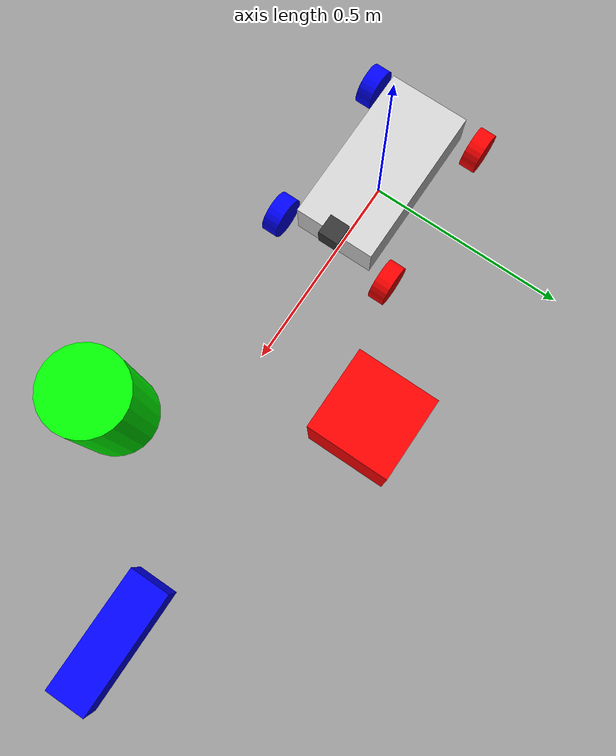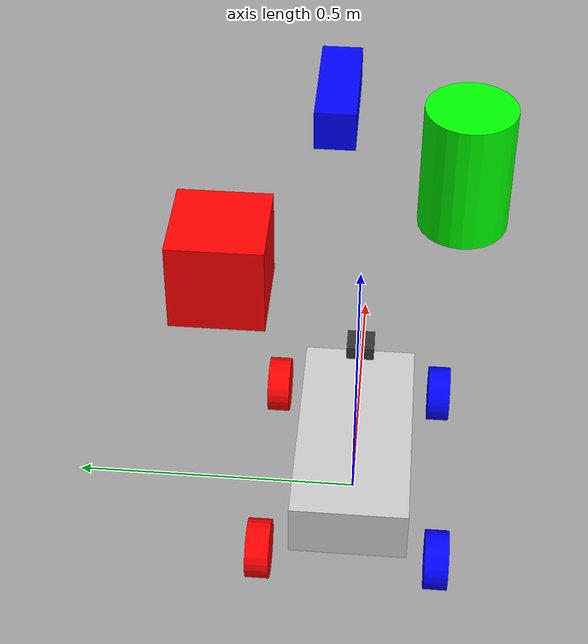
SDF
<?xml version="1.0" ?>
<sdf version="1.7">
  <world name="default">
    <model name="robot">
      <!-- Robot body -->
      <link name="body">
        <pose>0 0 0.1 0 0 0</pose>
        <visual name="body_visual">
          <geometry>
            <box>
              <size>0.4 0.2 0.1</size>
            </box>
          </geometry>
          <material>
            <ambient>0.8 0.8 0.8 1</ambient>
            <diffuse>0.8 0.8 0.8 1</diffuse>
            <specular>0.2 0.2 0.2 1</specular>
          </material>
        </visual>
        <collision name="body_collision">
          <geometry>
            <box>
              <size>0.4 0.2 0.1</size>
            </box>
          </geometry>
        </collision>
        <inertial>
          <mass>7.5</mass>
          <inertia>
            <ixx>0.75</ixx>
            <ixy>0</ixy>
            <ixz>0</ixz>
            <iyy>0.75</iyy>
            <iyz>0</iyz>
            <izz>0.75</izz>
          </inertia>
        </inertial>
      </link>

      <!-- Front left wheel -->
      <link name="front_left_wheel">
        <pose>0.2 0.15 0.05 1.5708 0 0</pose>
        <visual name="front_left_wheel_visual">
          <geometry>
            <cylinder>
              <radius>0.05</radius>
              <length>0.04</length>
            </cylinder>
          </geometry>
          <material>
            <ambient>1 0 0 1</ambient>
            <diffuse>1 0 0 1</diffuse>
            <specular>0.1 0.1 0.1 1</specular>
          </material>
        </visual>
        <collision name="front_left_wheel_collision">
          <geometry>
            <cylinder>
              <radius>0.05</radius>
              <length>0.04</length>
            </cylinder>
          </geometry>
          <surface>
            <friction>
              <ode>
                <mu>1</mu>
                <mu2>1</mu2>
                <slip1>0.035</slip1>
                <slip2>0</slip2>
                <fdir1>0 0 1</fdir1>
              </ode>
            </friction>
          </surface>
        </collision>
        <inertial>
          <mass>0.4</mass>
          <inertia>
            <ixx>0.0004</ixx>
            <ixy>0</ixy>
            <ixz>0</ixz>
            <iyy>0.0004</iyy>
            <iyz>0</iyz>
            <izz>0.0004</izz>
          </inertia>
        </inertial>
      </link>

      <!-- Front right wheel -->
      <link name="front_right_wheel">
        <pose>0.2 -0.15 0.05 1.5708 0 0</pose>
        <visual name="front_right_wheel_visual">
          <geometry>
            <cylinder>
              <radius>0.05</radius>
              <length>0.04</length>
            </cylinder>
          </geometry>
          <material>
            <ambient>0 0 1 1</ambient>
            <diffuse>0 0 1 1</diffuse>
            <specular>0.1 0.1 0.1 1</specular>
          </material>
        </visual>
        <collision name="front_right_wheel_collision">
          <geometry>
            <cylinder>
              <radius>0.05</radius>
              <length>0.04</length>
            </cylinder>
          </geometry>
          <surface>
            <friction>
              <ode>
                <mu>1</mu>
                <mu2>1</mu2>
                <slip1>0.035</slip1>
                <slip2>0</slip2>
                <fdir1>0 0 1</fdir1>
              </ode>
            </friction>
          </surface>
        </collision>
        <inertial>
          <mass>0.4</mass>
          <inertia>
            <ixx>0.0004</ixx>
            <ixy>0</ixy>
            <ixz>0</ixz>
            <iyy>0.0004</iyy>
            <iyz>0</iyz>
            <izz>0.0004</izz>
          </inertia>
        </inertial>
      </link>

      <!-- Rear left wheel -->
      <link name="rear_left_wheel">
        <pose>-0.2 0.15 0.05 1.5708 0 0</pose>
        <visual name="rear_left_wheel_visual">
          <geometry>
            <cylinder>
              <radius>0.05</radius>
              <length>0.04</length>
            </cylinder>
          </geometry>
          <material>
            <ambient>1 0 0 1</ambient>
            <diffuse>1 0 0 1</diffuse>
            <specular>0.1 0.1 0.1 1</specular>
          </material>
        </visual>
        <collision name="rear_left_wheel_collision">
          <geometry>
            <cylinder>
              <radius>0.05</radius>
              <length>0.04</length>
            </cylinder>
          </geometry>
          <surface>
            <friction>
              <ode>
                <mu>1</mu>
                <mu2>1</mu2>
                <slip1>0.035</slip1>
                <slip2>0</slip2>
                <fdir1>0 0 1</fdir1>
              </ode>
            </friction>
          </surface>
        </collision>
        <inertial>
          <mass>0.4</mass>
          <inertia>
            <ixx>0.0004</ixx>
            <ixy>0</ixy>
            <ixz>0</ixz>
            <iyy>0.0004</iyy>
            <iyz>0</iyz>
            <izz>0.0004</izz>
          </inertia>
        </inertial>
      </link>

      <!-- Rear right wheel -->
      <link name="rear_right_wheel">
        <pose>-0.2 -0.15 0.05 1.5708 0 0</pose>
        <visual name="rear_right_wheel_visual">
          <geometry>
            <cylinder>
              <radius>0.05</radius>
              <length>0.04</length>
            </cylinder>
          </geometry>
          <material>
            <ambient>0 0 1 1</ambient>
            <diffuse>0 0 1 1</diffuse>
            <specular>0.1 0.1 0.1 1</specular>
          </material>
        </visual>
        <collision name="rear_right_wheel_collision">
          <geometry>
            <cylinder>
              <radius>0.05</radius>
              <length>0.04</length>
            </cylinder>
          </geometry>
          <surface>
            <friction>
              <ode>
                <mu>1</mu>
                <mu2>1</mu2>
                <slip1>0.035</slip1>
                <slip2>0</slip2>
                <fdir1>0 0 1</fdir1>
              </ode>
            </friction>
          </surface>
        </collision>
        <inertial>
          <mass>0.4</mass>
          <inertia>
            <ixx>0.0004</ixx>
            <ixy>0</ixy>
            <ixz>0</ixz>
            <iyy>0.0004</iyy>
            <iyz>0</iyz>
            <izz>0.0004</izz>
          </inertia>
        </inertial>
      </link>

      <!-- Depth Camera -->
      <link name="camera1_link">
        <pose>0.2 0 0.15 0 0 0</pose>
        <visual name="camera_visual">
          <geometry>
            <box>
              <size>0.05 0.05 0.05</size>
            </box>
          </geometry>
          <material>
            <ambient>0.2 0.2 0.2 1</ambient>
            <diffuse>0.2 0.2 0.2 1</diffuse>
            <specular>0.1 0.1 0.1 1</specular>
          </material>
        </visual>
        <collision name="camera_collision">
          <geometry>
            <box>
              <size>0.05 0.05 0.05</size>
            </box>
          </geometry>
        </collision>
        <inertial>
          <mass>0.1</mass>
          <inertia>
            <ixx>0.0001</ixx>
            <ixy>0</ixy>
            <ixz>0</ixz>
            <iyy>0.0001</iyy>
            <iyz>0</iyz>
            <izz>0.0001</izz>
          </inertia>
        </inertial>
        <!-- RGB Camera -->
        <sensor name="camera1_rgb" type="camera">
          <update_rate>30</update_rate>
          <topic>/camera1/image</topic>
          <camera>
            <horizontal_fov>1.05</horizontal_fov>
            <image>
              <width>640</width>
              <height>480</height>
              <format>R8G8B8</format>
            </image>
            <clip>
              <near>0.1</near>
              <far>10.0</far>
            </clip>
          </camera>
        </sensor>
        <!-- Depth Camera -->
        <sensor name="camera1_depth" type="depth_camera">
          <update_rate>30</update_rate>
          <topic>/camera1/depth</topic>
          <camera>
            <horizontal_fov>1.05</horizontal_fov>
            <image>
              <width>640</width>
              <height>480</height>
              <format>R_FLOAT32</format>
            </image>
            <clip>
              <near>0.1</near>
              <far>10.0</far>
            </clip>
          </camera>
        </sensor>
        <!-- Camera Info -->
        <sensor name="camera1_info" type="camera">
          <update_rate>30</update_rate>
          <topic>/camera1/camera_info</topic>
          <camera>
            <horizontal_fov>1.05</horizontal_fov>
            <image>
              <width>640</width>
              <height>480</height>
              <format>R8G8B8</format>
            </image>
            <clip>
              <near>0.1</near>
              <far>10.0</far>
            </clip>
          </camera>
        </sensor>
      </link>

      <joint name="camera_joint" type="fixed">
        <parent>body</parent>
        <child>camera1_link</child>
      </joint>

      <!-- Joints -->
      <joint name="front_left_wheel_joint" type="revolute">
        <parent>body</parent>
        <child>front_left_wheel</child>
        <axis>
          <xyz>0 0 1</xyz>
          <limit>
            <lower>-1000</lower>
            <upper>1000</upper>
            <effort>100</effort>
            <velocity>100</velocity>
          </limit>
          <dynamics>
            <damping>0.1</damping>
            <friction>0.5</friction>
          </dynamics>
        </axis>
      </joint>

      <joint name="front_right_wheel_joint" type="revolute">
        <parent>body</parent>
        <child>front_right_wheel</child>
        <axis>
          <xyz>0 0 1</xyz>
          <limit>
            <lower>-1000</lower>
            <upper>1000</upper>
            <effort>100</effort>
            <velocity>100</velocity>
          </limit>
          <dynamics>
            <damping>0.1</damping>
            <friction>0.5</friction>
          </dynamics>
        </axis>
      </joint>

      <joint name="rear_left_wheel_joint" type="revolute">
        <parent>body</parent>
        <child>rear_left_wheel</child>
        <axis>
          <xyz>0 0 1</xyz>
          <limit>
            <lower>-1000</lower>
            <upper>1000</upper>
            <effort>100</effort>
            <velocity>100</velocity>
          </limit>
          <dynamics>
            <damping>0.1</damping>
            <friction>0.5</friction>
          </dynamics>
        </axis>
      </joint>

      <joint name="rear_right_wheel_joint" type="revolute">
        <parent>body</parent>
        <child>rear_right_wheel</child>
        <axis>
          <xyz>0 0 1</xyz>
          <limit>
            <lower>-1000</lower>
            <upper>1000</upper>
            <effort>100</effort>
            <velocity>100</velocity>
          </limit>
          <dynamics>
            <damping>0.1</damping>
            <friction>0.5</friction>
          </dynamics>
        </axis>
      </joint>

      <!-- Plugin for differential drive -->
      <plugin filename="ignition-gazebo-diff-drive-system" name="ignition::gazebo::systems::DiffDrive">
        <left_joint>front_left_wheel_joint</left_joint>
        <left_joint>rear_left_wheel_joint</left_joint>
        <right_joint>front_right_wheel_joint</right_joint>
        <right_joint>rear_right_wheel_joint</right_joint>
        <wheel_separation>0.3</wheel_separation>
        <wheel_radius>0.05</wheel_radius>
        <max_linear_acceleration>1</max_linear_acceleration>
        <min_linear_acceleration>-1</min_linear_acceleration>
        <max_angular_acceleration>2</max_angular_acceleration>
        <min_angular_acceleration>-2</min_angular_acceleration>
        <max_linear_velocity>0.5</max_linear_velocity>
        <min_linear_velocity>-0.5</min_linear_velocity>
        <max_angular_velocity>1</max_angular_velocity>
        <min_angular_velocity>-1</min_angular_velocity>
        <topic>/cmd_vel</topic>
        <odom_topic>/odom</odom_topic>
        <odom_publish_frequency>100</odom_publish_frequency>
        <publish_odom>true</publish_odom>
        <publish_odom_tf>true</publish_odom_tf>
        <use_stamped_vel>false</use_stamped_vel>
        <update_rate>100</update_rate>
        <command_timeout>1.0</command_timeout>
        <publish_wheel_tf>true</publish_wheel_tf>
        <robot_base_frame>body</robot_base_frame>
        <odom_frame>odom</odom_frame>
        <wheel_direction>-1</wheel_direction>
      </plugin>

      <!-- Plugin for sensors -->
      <plugin filename="ignition-gazebo-sensors-system"
      name="gz::sim::systems::Sensors">
        <render_engine>ogre2</render_engine>
      </plugin>
    </model>

    <!-- Objects for depth camera to detect -->
    <model name="obstacle1">
      <static>true</static>
      <pose>0.5 0.3 0.1 0 0 0</pose>
      <link name="link">
        <visual name="visual">
          <geometry>
            <box>
              <size>0.2 0.2 0.2</size>
            </box>
          </geometry>
          <material>
            <ambient>1 0 0 1</ambient>
            <diffuse>1 0 0 1</diffuse>
            <specular>0.1 0.1 0.1 1</specular>
          </material>
        </visual>
        <collision name="collision">
          <geometry>
            <box>
              <size>0.2 0.2 0.2</size>
            </box>
          </geometry>
        </collision>
        <inertial>
          <mass>1.0</mass>
          <inertia>
            <ixx>0.1</ixx>
            <ixy>0</ixy>
            <ixz>0</ixz>
            <iyy>0.1</iyy>
            <iyz>0</iyz>
            <izz>0.1</izz>
          </inertia>
        </inertial>
      </link>
    </model>

    <model name="obstacle2">
      <static>true</static>
      <pose>0.8 -0.2 0.15 0 0 0.5</pose>
      <link name="link">
        <visual name="visual">
          <geometry>
            <cylinder>
              <radius>0.1</radius>
              <length>0.3</length>
            </cylinder>
          </geometry>
          <material>
            <ambient>0 1 0 1</ambient>
            <diffuse>0 1 0 1</diffuse>
            <specular>0.1 0.1 0.1 1</specular>
          </material>
        </visual>
        <collision name="collision">
          <geometry>
            <cylinder>
              <radius>0.1</radius>
              <length>0.3</length>
            </cylinder>
          </geometry>
        </collision>
        <inertial>
          <mass>1.0</mass>
          <inertia>
            <ixx>0.1</ixx>
            <ixy>0</ixy>
            <ixz>0</ixz>
            <iyy>0.1</iyy>
            <iyz>0</iyz>
            <izz>0.1</izz>
          </inertia>
        </inertial>
      </link>
    </model>

    <model name="obstacle3">
      <static>true</static>
      <pose>1.2 0.1 0.05 0 0 0</pose>
      <link name="link">
        <visual name="visual">
          <geometry>
            <box>
              <size>0.3 0.1 0.1</size>
            </box>
          </geometry>
          <material>
            <ambient>0 0 1 1</ambient>
            <diffuse>0 0 1 1</diffuse>
            <specular>0.1 0.1 0.1 1</specular>
          </material>
        </visual>
        <collision name="collision">
          <geometry>
            <box>
              <size>0.3 0.1 0.1</size>
            </box>
          </geometry>
        </collision>
        <inertial>
          <mass>1.0</mass>
          <inertia>
            <ixx>0.1</ixx>
            <ixy>0</ixy>
            <ixz>0</ixz>
            <iyy>0.1</iyy>
            <iyz>0</iyz>
            <izz>0.1</izz>
          </inertia>
        </inertial>
      </link>
    </model>
  </world>
</sdf>
